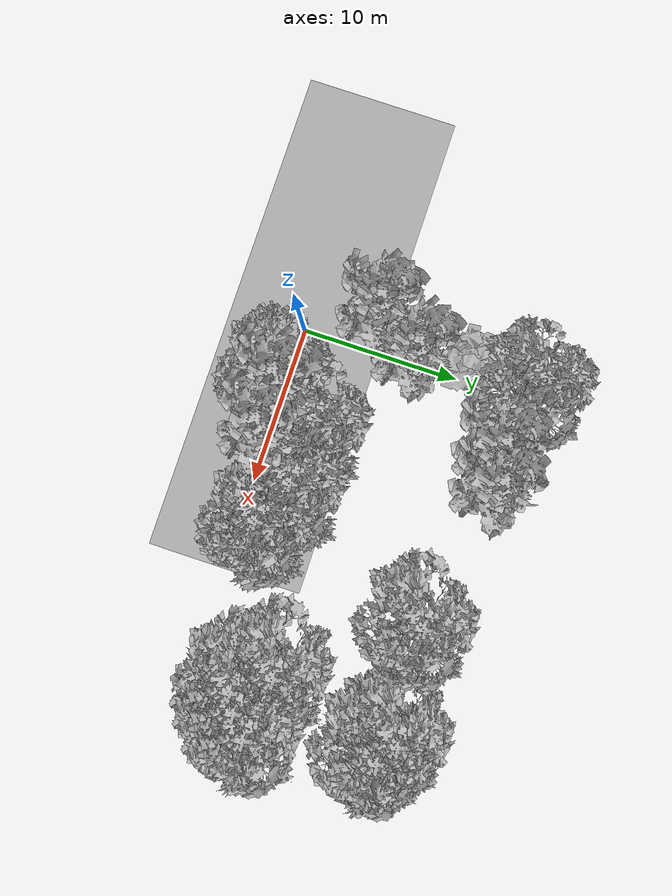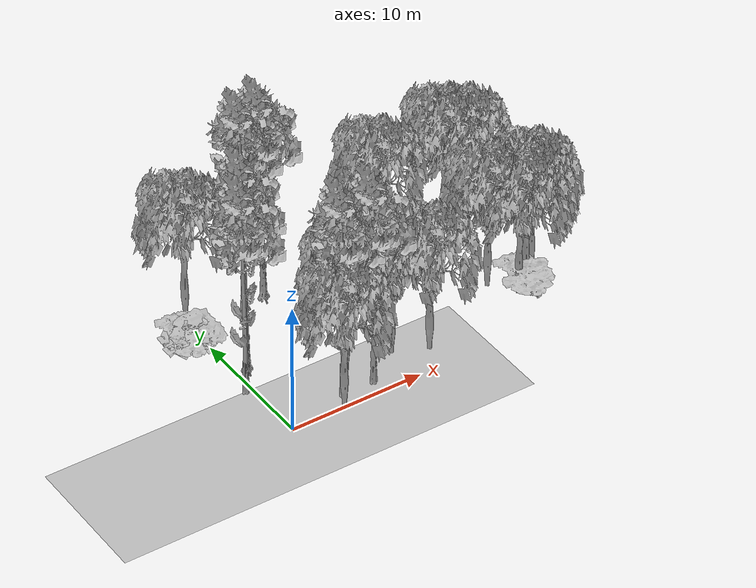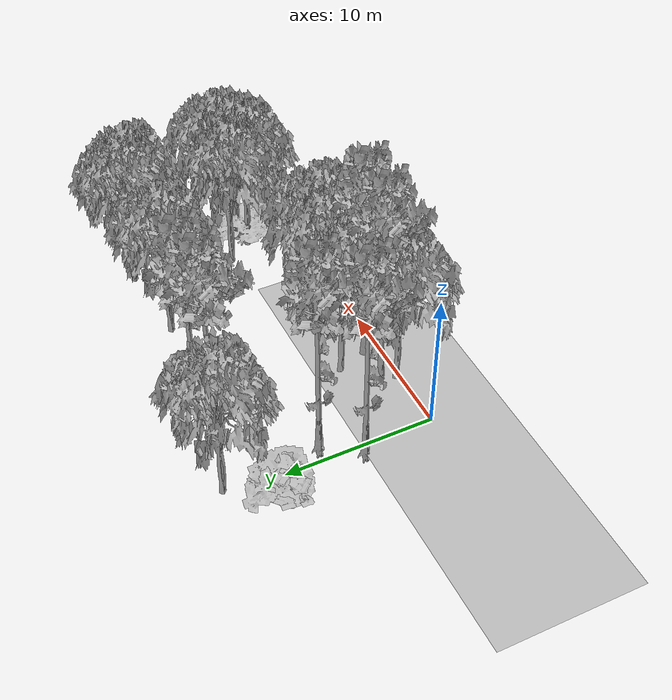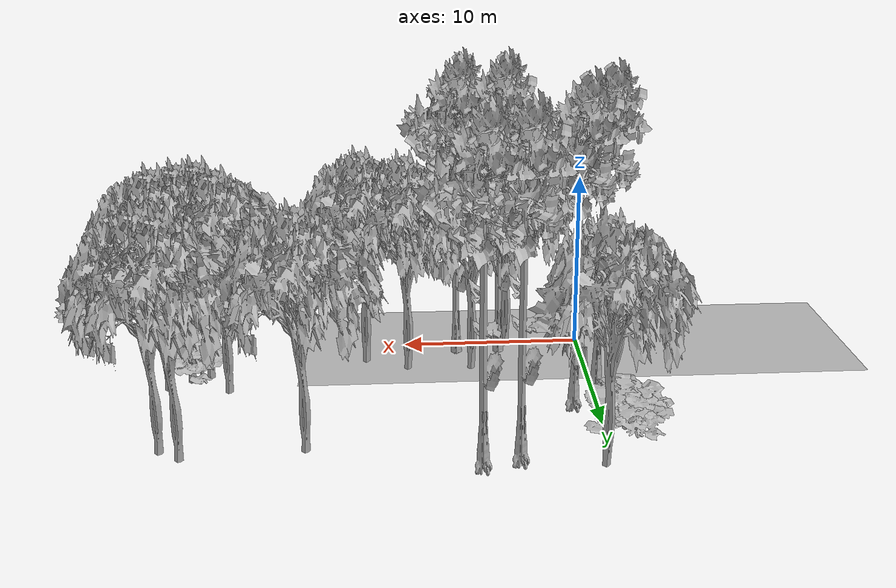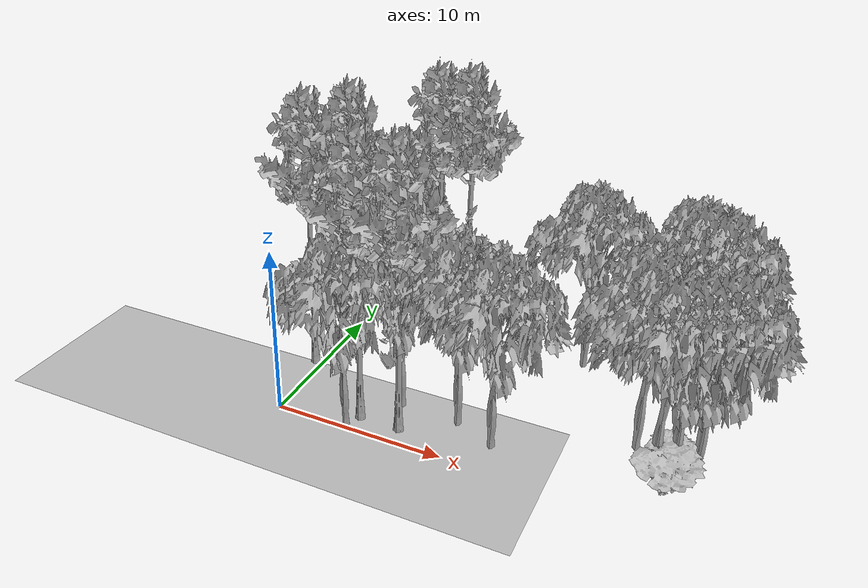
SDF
<sdf version="1.7">
 <world name="default">
  <model name="ground_plane">
   <static>1</static>
   <link name="link">
    <collision name="collision">
     <pose>-50 0 0 0 -0 0</pose>
     <geometry><plane><normal>0 0 1</normal><size>100 100</size></plane></geometry>
     <surface><contact><ode><min_depth>0.01</min_depth><max_vel>0</max_vel></ode></contact></surface>
    </collision>
    <visual name="grass">
     <cast_shadows>0</cast_shadows>
     <geometry>
      <mesh>
       <scale>0.5814285714285714 0.18142857142857144 0.1</scale>
       <uri>file://grass_plane/meshes/grass_plane.dae</uri>
      </mesh>
     </geometry>
    </visual>
   </link>
  </model>
  <model name="Tree 10">
   <static>1</static>
   <pose>-1.5145191692231847 10.884960249035881 0 1.57079 -0 0</pose>
   <link name="link">
    <collision name="collision">
     <geometry><mesh><scale>4 2.5 4</scale><uri>model://tree_1/meshes/tree_1.obj</uri></mesh></geometry>
    </collision>
    <visual name="visual">
     <geometry><mesh><scale>4 2.5 4</scale><uri>model://tree_1/meshes/tree_1.obj</uri></mesh></geometry>
    </visual>
   </link>
  </model>
  <model name="Tree 17">
   <static>1</static>
   <pose>12.033492077888852 1.9867467809147676 0 1.57079 -0 0</pose>
   <link name="link">
    <collision name="collision">
     <geometry><mesh><scale>3.5 5 3.5</scale><uri>model://tree_2/meshes/tree_2.obj</uri></mesh></geometry>
    </collision>
    <visual name="visual">
     <geometry><mesh><scale>3.5 5 3.5</scale><uri>model://tree_2/meshes/tree_2.obj</uri></mesh></geometry>
    </visual>
   </link>
  </model>
  <model name="Tree 20">
   <static>1</static>
   <pose>20.278932603489096 12.200697511291253 0 1.57079 -0 0</pose>
   <link name="link">
    <collision name="collision">
     <geometry><mesh><scale>3.5 5 3.5</scale><uri>model://tree_2/meshes/tree_2.obj</uri></mesh></geometry>
    </collision>
    <visual name="visual">
     <geometry><mesh><scale>3.5 5 3.5</scale><uri>model://tree_2/meshes/tree_2.obj</uri></mesh></geometry>
    </visual>
   </link>
  </model>
  <model name="Tree 36">
   <static>1</static>
   <pose>14.433897121870402 11.704759739705779 0 1.57079 -0 0</pose>
   <link name="link">
    <collision name="collision">
     <geometry><mesh><scale>3.5 5 3.5</scale><uri>model://tree_2/meshes/tree_2.obj</uri></mesh></geometry>
    </collision>
    <visual name="visual">
     <geometry><mesh><scale>3.5 5 3.5</scale><uri>model://tree_2/meshes/tree_2.obj</uri></mesh></geometry>
    </visual>
   </link>
  </model>
  <model name="Tree 43">
   <static>1</static>
   <pose>21.29463465197867 4.019802528284156 0 1.57079 -0 0</pose>
   <link name="link">
    <collision name="collision">
     <geometry><mesh><scale>3.5 5 3.5</scale><uri>model://tree_2/meshes/tree_2.obj</uri></mesh></geometry>
    </collision>
    <visual name="visual">
     <geometry><mesh><scale>3.5 5 3.5</scale><uri>model://tree_2/meshes/tree_2.obj</uri></mesh></geometry>
    </visual>
   </link>
  </model>
  <model name="Tree 51">
   <static>1</static>
   <pose>6.156285142564336 13.060197871663483 0 1.57079 -0 0</pose>
   <link name="link">
    <collision name="collision">
     <geometry><mesh><scale>3.5 5 3.5</scale><uri>model://tree_9/meshes/tree_9.obj</uri></mesh></geometry>
    </collision>
    <visual name="visual">
     <geometry><mesh><scale>3.5 5 3.5</scale><uri>model://tree_9/meshes/tree_9.obj</uri></mesh></geometry>
    </visual>
   </link>
  </model>
  <model name="Tree 52">
   <static>1</static>
   <pose>20.386854774955296 3.5400161686565426 0 1.57079 -0 0</pose>
   <link name="link">
    <collision name="collision">
     <geometry><mesh><scale>3.5 5 3.5</scale><uri>model://tree_2/meshes/tree_2.obj</uri></mesh></geometry>
    </collision>
    <visual name="visual">
     <geometry><mesh><scale>3.5 5 3.5</scale><uri>model://tree_2/meshes/tree_2.obj</uri></mesh></geometry>
    </visual>
   </link>
  </model>
  <model name="Tree 63">
   <static>1</static>
   <pose>19.09893333977044 5.349836359904657 0 1.57079 -0 0</pose>
   <link name="link">
    <collision name="collision">
     <geometry><mesh><scale>3.5 5 3.5</scale><uri>model://tree_2/meshes/tree_2.obj</uri></mesh></geometry>
    </collision>
    <visual name="visual">
     <geometry><mesh><scale>3.5 5 3.5</scale><uri>model://tree_2/meshes/tree_2.obj</uri></mesh></geometry>
    </visual>
   </link>
  </model>
  <model name="Tree 83">
   <static>1</static>
   <pose>0.3708828283997292 13.817760275779836 0 1.57079 -0 0</pose>
   <link name="link">
    <collision name="collision">
     <geometry><mesh><scale>3.5 5 3.5</scale><uri>model://tree_2/meshes/tree_2.obj</uri></mesh></geometry>
    </collision>
    <visual name="visual">
     <geometry><mesh><scale>3.5 5 3.5</scale><uri>model://tree_2/meshes/tree_2.obj</uri></mesh></geometry>
    </visual>
   </link>
  </model>
  <model name="Tree 84">
   <static>1</static>
   <pose>-0.4744339508518891 4.870449482646638 0 1.57079 -0 0</pose>
   <link name="link">
    <collision name="collision">
     <geometry><mesh><scale>3.5 5 3.5</scale><uri>model://tree_9/meshes/tree_9.obj</uri></mesh></geometry>
    </collision>
    <visual name="visual">
     <geometry><mesh><scale>3.5 5 3.5</scale><uri>model://tree_9/meshes/tree_9.obj</uri></mesh></geometry>
    </visual>
   </link>
  </model>
  <model name="Tree 86">
   <static>1</static>
   <pose>6.18026446856031 3.1679912262248564 0 1.57079 -0 0</pose>
   <link name="link">
    <collision name="collision">
     <geometry><mesh><scale>3.5 5 3.5</scale><uri>model://tree_2/meshes/tree_2.obj</uri></mesh></geometry>
    </collision>
    <visual name="visual">
     <geometry><mesh><scale>3.5 5 3.5</scale><uri>model://tree_2/meshes/tree_2.obj</uri></mesh></geometry>
    </visual>
   </link>
  </model>
  <model name="Tree 99">
   <static>1</static>
   <pose>-1.0705091185393059 10.314867613298453 0 1.57079 -0 0</pose>
   <link name="link">
    <collision name="collision">
     <geometry><mesh><scale>3 2 3</scale><uri>model://tree_3/meshes/tree_3.obj</uri></mesh></geometry>
    </collision>
    <visual name="visual">
     <geometry><mesh><scale>3 2 3</scale><uri>model://tree_3/meshes/tree_3.obj</uri></mesh></geometry>
    </visual>
   </link>
  </model>
  <model name="Tree 108">
   <static>1</static>
   <pose>4.343054627445902 12.617350449992301 0 1.57079 -0 0</pose>
   <link name="link">
    <collision name="collision">
     <geometry><mesh><scale>3.5 5 3.5</scale><uri>model://tree_9/meshes/tree_9.obj</uri></mesh></geometry>
    </collision>
    <visual name="visual">
     <geometry><mesh><scale>3.5 5 3.5</scale><uri>model://tree_9/meshes/tree_9.obj</uri></mesh></geometry>
    </visual>
   </link>
  </model>
  <model name="Tree 110">
   <static>1</static>
   <pose>4.083087683660736 0.22668755951099406 0 1.57079 -0 0</pose>
   <link name="link">
    <collision name="collision">
     <geometry><mesh><scale>3.5 5 3.5</scale><uri>model://tree_2/meshes/tree_2.obj</uri></mesh></geometry>
    </collision>
    <visual name="visual">
     <geometry><mesh><scale>3.5 5 3.5</scale><uri>model://tree_2/meshes/tree_2.obj</uri></mesh></geometry>
    </visual>
   </link>
  </model>
  <model name="Tree 112">
   <static>1</static>
   <pose>22.360862342491828 4.880785770955132 0 1.57079 -0 0</pose>
   <link name="link">
    <collision name="collision">
     <geometry><mesh><scale>3.5 5 3.5</scale><uri>model://tree_2/meshes/tree_2.obj</uri></mesh></geometry>
    </collision>
    <visual name="visual">
     <geometry><mesh><scale>3.5 5 3.5</scale><uri>model://tree_2/meshes/tree_2.obj</uri></mesh></geometry>
    </visual>
   </link>
  </model>
  <model name="Tree 132">
   <static>1</static>
   <pose>4.641286792839836 1.1357048728358947 0 1.57079 -0 0</pose>
   <link name="link">
    <collision name="collision">
     <geometry><mesh><scale>3.5 5 3.5</scale><uri>model://tree_9/meshes/tree_9.obj</uri></mesh></geometry>
    </collision>
    <visual name="visual">
     <geometry><mesh><scale>3.5 5 3.5</scale><uri>model://tree_9/meshes/tree_9.obj</uri></mesh></geometry>
    </visual>
   </link>
  </model>
  <model name="Tree 150">
   <static>1</static>
   <pose>21.369928006069557 11.474157061919943 0 1.57079 -0 0</pose>
   <link name="link">
    <collision name="collision">
     <geometry><mesh><scale>3.5 5 3.5</scale><uri>model://tree_2/meshes/tree_2.obj</uri></mesh></geometry>
    </collision>
    <visual name="visual">
     <geometry><mesh><scale>3.5 5 3.5</scale><uri>model://tree_2/meshes/tree_2.obj</uri></mesh></geometry>
    </visual>
   </link>
  </model>
  <model name="Tree 166">
   <static>1</static>
   <pose>7.038315002783442 1.0972612113744376 0 1.57079 -0 0</pose>
   <link name="link">
    <collision name="collision">
     <geometry><mesh><scale>3.5 5 3.5</scale><uri>model://tree_9/meshes/tree_9.obj</uri></mesh></geometry>
    </collision>
    <visual name="visual">
     <geometry><mesh><scale>3.5 5 3.5</scale><uri>model://tree_9/meshes/tree_9.obj</uri></mesh></geometry>
    </visual>
   </link>
  </model>
  <model name="Tree 168">
   <static>1</static>
   <pose>20.942951255212478 3.7298681168368866 0 1.57079 -0 0</pose>
   <link name="link">
    <collision name="collision">
     <geometry><mesh><scale>4 2.5 4</scale><uri>model://tree_1/meshes/tree_1.obj</uri></mesh></geometry>
    </collision>
    <visual name="visual">
     <geometry><mesh><scale>4 2.5 4</scale><uri>model://tree_1/meshes/tree_1.obj</uri></mesh></geometry>
    </visual>
   </link>
  </model>
  <model name="Tree 173">
   <static>1</static>
   <pose>1.0873109517748318 7.236412732549319 0 1.57079 -0 0</pose>
   <link name="link">
    <collision name="collision">
     <geometry><mesh><scale>3.5 5 3.5</scale><uri>model://tree_9/meshes/tree_9.obj</uri></mesh></geometry>
    </collision>
    <visual name="visual">
     <geometry><mesh><scale>3.5 5 3.5</scale><uri>model://tree_9/meshes/tree_9.obj</uri></mesh></geometry>
    </visual>
   </link>
  </model>
  <model name="Tree 174">
   <static>1</static>
   <pose>9.679789796691544 3.034039636647158 0 1.57079 -0 0</pose>
   <link name="link">
    <collision name="collision">
     <geometry><mesh><scale>3.5 5 3.5</scale><uri>model://tree_2/meshes/tree_2.obj</uri></mesh></geometry>
    </collision>
    <visual name="visual">
     <geometry><mesh><scale>3.5 5 3.5</scale><uri>model://tree_2/meshes/tree_2.obj</uri></mesh></geometry>
    </visual>
   </link>
  </model>
  <model name="Bush 0">
   <static>1</static>
   <pose>21.20152885629585 2.716277727103588 0 1.57079 -0 0</pose>
   <link name="link">
    <collision name="collision">
     <geometry><mesh><scale>2 2 2</scale><uri>model://bush_3/meshes/bush_3.obj</uri></mesh></geometry>
     <surface><contact><collide_without_contact>false</collide_without_contact></contact></surface>
    </collision>
    <visual name="visual">
     <geometry><mesh><scale>2 2 2</scale><uri>model://bush_3/meshes/bush_3.obj</uri></mesh></geometry>
    </visual>
   </link>
  </model>
 </world>
</sdf>
